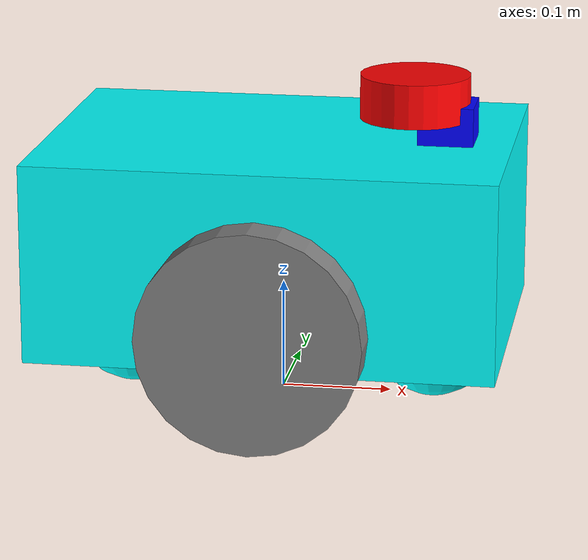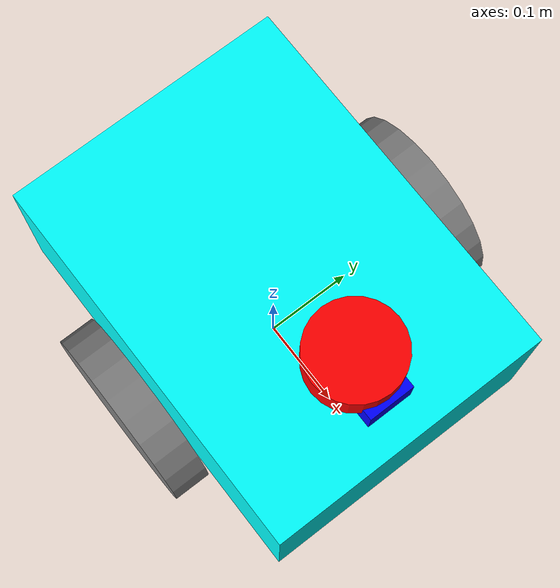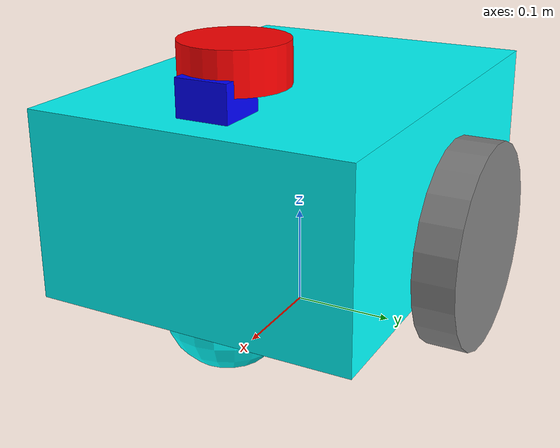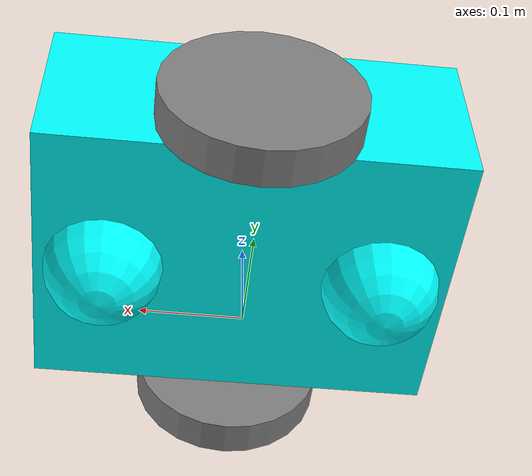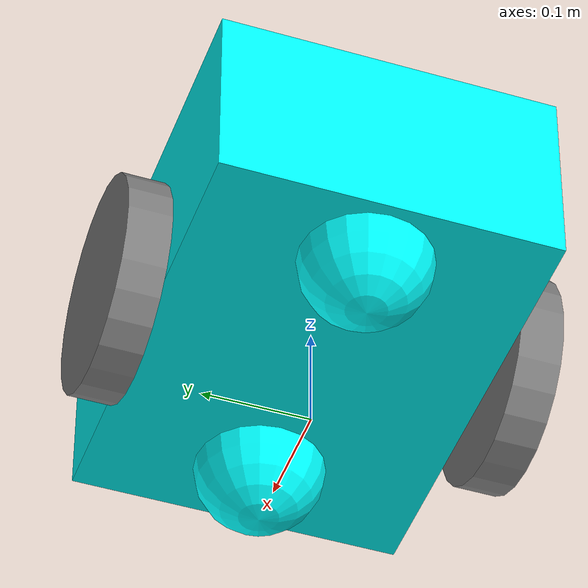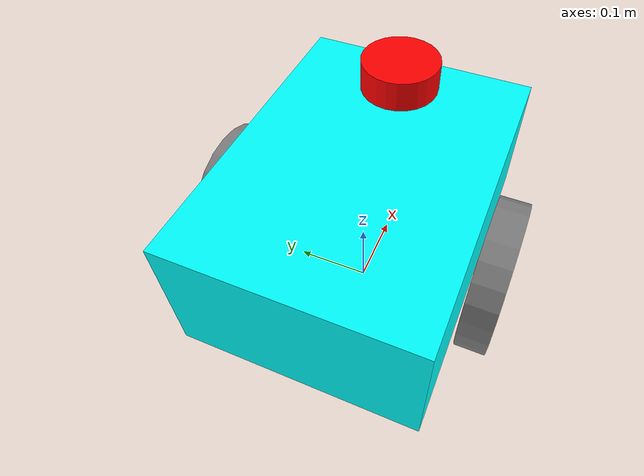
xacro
<?xml version="1.0"?>
<robot name="sam_bot" xmlns:xacro="http://ros.org/wiki/xacro">

  <!-- =============================================================
       0. 기본 파라미터
       ============================================================= -->
  <xacro:property name="base_width"  value="0.31"/>
  <xacro:property name="base_length" value="0.42"/>
  <xacro:property name="base_height" value="0.18"/>

  <xacro:property name="wheel_radius" value="0.10"/>
  <xacro:property name="wheel_width"  value="0.04"/>
  <xacro:property name="wheel_ygap"   value="0.025"/>
  <xacro:property name="wheel_zoff"   value="0.05"/>
  <xacro:property name="wheel_xoff"   value="0.0"/>

  <xacro:property name="caster_xoff"  value="0.14"/>

  <!-- =============================================================
       1. 관성 매크로
       ============================================================= -->
  <xacro:macro name="box_inertia" params="m w h d">
    <inertial>
      <origin xyz="0 0 0" rpy="${pi/2} 0 ${pi/2}"/>
      <mass value="${m}"/>
      <inertia ixx="${(m/12) * (h*h + d*d)}" ixy="0.0" ixz="0.0"
               iyy="${(m/12) * (w*w + d*d)}" iyz="0.0"
               izz="${(m/12) * (w*w + h*h)}"/>
    </inertial>
  </xacro:macro>

  <xacro:macro name="cylinder_inertia" params="m r h">
    <inertial>
      <origin xyz="0 0 0" rpy="${pi/2} 0 0" />
      <mass value="${m}"/>
      <inertia ixx="${(m/12) * (3*r*r + h*h)}" ixy="0" ixz="0"
               iyy="${(m/12) * (3*r*r + h*h)}" iyz="0"
               izz="${(m/2) * (r*r)}"/>
    </inertial>
  </xacro:macro>

  <xacro:macro name="sphere_inertia" params="m r">
    <inertial>
      <mass value="${m}"/>
      <inertia ixx="${(2/5) * m * (r*r)}" ixy="0.0" ixz="0.0"
               iyy="${(2/5) * m * (r*r)}" iyz="0.0"
               izz="${(2/5) * m * (r*r)}"/>
    </inertial>
  </xacro:macro>

  <!-- =============================================================
       2. 링크 / 조인트
       ============================================================= -->

  <link name="base_link">
    <visual>
      <geometry>
        <box size="${base_length} ${base_width} ${base_height}"/>
      </geometry>
      <material name="Cyan">
        <color rgba="0 1.0 1.0 1.0"/>
      </material>
    </visual>
    <collision>
      <geometry>
        <box size="${base_length} ${base_width} ${base_height}"/>
      </geometry>
    </collision>
    <xacro:box_inertia m="15" w="${base_width}" d="${base_length}" h="${base_height}"/>
  </link>

  <link name="base_footprint"/>

  <joint name="base_joint" type="fixed">
    <parent link="base_footprint"/>
    <child link="base_link"/>
    <origin xyz="0.0 0.0 ${(wheel_radius + wheel_zoff)}" rpy="0 0 0"/>
  </joint>

  <xacro:macro name="wheel" params="prefix x_reflect y_reflect">
    <link name="${prefix}_link">
      <visual>
        <origin xyz="0 0 0" rpy="${pi/2} 0 0"/>
        <geometry>
          <cylinder radius="${wheel_radius}" length="${wheel_width}"/>
        </geometry>
        <material name="Gray">
          <color rgba="0.5 0.5 0.5 1.0"/>
        </material>
      </visual>
      <collision>
        <origin xyz="0 0 0" rpy="${pi/2} 0 0"/>
        <geometry>
          <cylinder radius="${wheel_radius}" length="${wheel_width}"/>
        </geometry>
      </collision>
      <xacro:cylinder_inertia m="0.5" r="${wheel_radius}" h="${wheel_width}"/>
    </link>

    <joint name="${prefix}_joint" type="continuous">
      <parent link="base_link"/>
      <child link="${prefix}_link"/>
      <origin xyz="${x_reflect * wheel_xoff} ${y_reflect * (base_width/2 + wheel_ygap)} ${-wheel_zoff}" rpy="0 0 0"/>
      <axis xyz="0 1 0"/>
    </joint>

    <!-- Gazebo 물리 속성 -->
    <gazebo reference="${prefix}_joint">
      <implicitSpringDamper>1</implicitSpringDamper>
    </gazebo>

    <gazebo reference="${prefix}_link">
      <mu1>1.0</mu1>
      <mu2>1.0</mu2>
      <kp>1000000.0</kp>
      <kd>100.0</kd>
      <material>Gazebo/Grey</material>
    </gazebo>
  </xacro:macro>

  <!-- 좌, 우 구동 휠 인스턴스 -->
  <xacro:wheel prefix="drivewhl_l" x_reflect="1" y_reflect="1"/>
  <xacro:wheel prefix="drivewhl_r" x_reflect="1" y_reflect="-1"/>

  <xacro:macro name="caster" params="prefix x_offset">
    <link name="${prefix}_caster">
      <visual>
        <geometry>
          <sphere radius="${wheel_radius + wheel_zoff - (base_height/2)}"/>
        </geometry>
        <material name="Cyan">
          <color rgba="0 1.0 1.0 1.0"/>
        </material>
      </visual>
      <collision>
        <geometry>
          <sphere radius="${wheel_radius + wheel_zoff - (base_height/2)}"/>
        </geometry>
      </collision>
      <xacro:sphere_inertia m="0.5" r="${wheel_radius + wheel_zoff - (base_height/2)}"/>
    </link>

    <joint name="${prefix}_caster_joint" type="fixed">
      <parent link="base_link"/>
      <child link="${prefix}_caster"/>
      <origin xyz="${x_offset} 0.0 ${-(base_height/2)}" rpy="0 0 0"/>
    </joint>
  </xacro:macro>

  <xacro:caster prefix="front" x_offset="${caster_xoff}"/>
  <xacro:caster prefix="rear"  x_offset="-${caster_xoff}"/>

  <!-- 레이저 -->
  <link name="laser">
    <visual>
      <geometry>
        <cylinder radius="0.05" length="0.04"/>
      </geometry>
      <material name="Red">
        <color rgba="1.0 0.0 0.0 1.0"/>
      </material>
    </visual>
    <collision>
      <geometry>
        <cylinder radius="0.05" length="0.04"/>
      </geometry>
    </collision>
    <xacro:cylinder_inertia m="0.1" r="0.05" h="0.04"/>
  </link>

  <joint name="laser_joint" type="fixed">
    <parent link="base_link"/>
    <child link="laser"/>
    <origin xyz="0.12 0 0.13" rpy="0 0 0"/>
  </joint>

  <!-- 카메라 -->
  <link name="camera_link">
    <visual>
      <geometry>
        <box size="0.05 0.05 0.05"/>
      </geometry>
      <material name="Blue">
        <color rgba="0.0 0.0 1.0 1.0"/>
      </material>
    </visual>
    <collision>
      <geometry>
        <box size="0.05 0.05 0.05"/>
      </geometry>
    </collision>
    <xacro:box_inertia m="0.1" w="0.05" d="0.05" h="0.05"/>
  </link>

  <joint name="camera_joint" type="fixed">
    <parent link="base_link"/>
    <child link="camera_link"/>
    <origin xyz="0.15 0 0.10" rpy="0 0 0"/>
  </joint>

  <link name="camera_depth_frame"/>
  <joint name="camera_depth_joint" type="fixed">
    <parent link="camera_link"/>
    <child link="camera_depth_frame"/>
    <origin xyz="0 0 0" rpy="-1.5707 0 -1.5707"/>
  </joint>

  <!-- IMU -->
  <link name="imu_link">
    <visual>
      <geometry>
        <box size="0.02 0.02 0.02"/>
      </geometry>
      <material name="Green">
        <color rgba="0 1.0 0 1.0"/>
      </material>
    </visual>
    <collision>
      <geometry>
        <box size="0.02 0.02 0.02"/>
      </geometry>
    </collision>
    <xacro:box_inertia m="0.01" w="0.02" d="0.02" h="0.02"/>
  </link>

  <joint name="imu_joint" type="fixed">
    <parent link="base_link"/>
    <child link="imu_link"/>
    <origin xyz="0 0 0.05" rpy="0 0 0"/>
  </joint>

  <!-- =============================================================
       3. Gazebo 플러그인 및 물리 설정
       ============================================================= -->

  <!-- (3‑1) Gazebo‑ROS State Publisher : TF 트리 브로드캐스트 -->
  <gazebo>
    <plugin name="gazebo_ros_state_publisher"
            filename="libgazebo_ros_state_publisher.so">
      <ros>
        <namespace>/</namespace>
      </ros>
    </plugin>
  </gazebo>

  <!-- (3‑2) 차동 구동 플러그인 -->
  <gazebo>
    <plugin name="differential_drive_controller"
            filename="libgazebo_ros_diff_drive.so">
      <ros>
        <namespace>/</namespace>
        <remapping>cmd_vel:=cmd_vel</remapping>
        <remapping>odom:=odom</remapping>
      </ros>

      <left_joint>drivewhl_l_joint</left_joint>
      <right_joint>drivewhl_r_joint</right_joint>

      <wheel_separation>0.36</wheel_separation>
      <wheel_diameter>0.2</wheel_diameter>

      <max_wheel_torque>200</max_wheel_torque>
      <max_wheel_acceleration>10.0</max_wheel_acceleration>

      <odometry_frame>odom</odometry_frame>
      <robot_base_frame>base_footprint</robot_base_frame>

      <publish_odom>true</publish_odom>
      <publish_odom_tf>true</publish_odom_tf>

      <!-- TF 중복 방지: wheel TF는 robot_state_publisher가 담당 -->
      <publish_wheel_tf>false</publish_wheel_tf>

      <odometry_topic>odom</odometry_topic>
      <odometry_source>world</odometry_source>

      <update_rate>30</update_rate>
    </plugin>
  </gazebo>

  <!-- (3‑3) 레이저 센서 -->
  <gazebo reference="laser">
    <material>Gazebo/FlatBlack</material>
    <sensor name="lds_lfcd_sensor" type="ray">
      <pose>0 0 0 0 0 0</pose>
      <visualize>true</visualize>
      <update_rate>5</update_rate>
      <ray>
        <scan>
          <horizontal>
            <samples>360</samples>
            <resolution>1</resolution>
            <min_angle>-3.141592654</min_angle>
            <max_angle>3.141592654</max_angle>
          </horizontal>
        </scan>
        <range>
          <min>0.10</min>
          <max>30.0</max>
          <resolution>0.01</resolution>
        </range>
        <noise>
          <type>gaussian</type>
          <mean>0.0</mean>
          <stddev>0.01</stddev>
        </noise>
      </ray>
      <plugin name="gazebo_ros_lds_lfcd_controller"
              filename="libgazebo_ros_ray_sensor.so">
        <ros>
          <remapping>~/out:=scan</remapping>
        </ros>
        <output_type>sensor_msgs/LaserScan</output_type>
      </plugin>
    </sensor>
  </gazebo>

  <!-- (3‑4) 카메라 센서 -->
  <gazebo reference="camera_link">
    <material>Gazebo/Blue</material>
    <sensor name="d455_camera" type="depth">
      <update_rate>30.0</update_rate>
      <camera>
        <horizontal_fov>1.518436</horizontal_fov>
        <vertical_fov>1.012291</vertical_fov>
        <image>
          <width>1280</width>
          <height>720</height>
          <format>R8G8B8</format>
        </image>
        <clip>
          <near>0.4</near>
          <far>6.0</far>
        </clip>
        <noise>
          <type>gaussian</type>
          <mean>0.0</mean>
          <stddev>0.007</stddev>
        </noise>
      </camera>
      <plugin name="camera_driver" filename="libgazebo_ros_camera.so">
        <ros>
          <remapping>~/image_raw:=camera/image_raw</remapping>
          <remapping>~/image_depth:=camera/depth/image_raw</remapping>
          <remapping>~/camera_info:=camera/camera_info</remapping>
          <remapping>~/camera_info_depth:=camera/depth/camera_info</remapping>
          <remapping>~/points:=camera/depth/points</remapping>
        </ros>
        <camera_name>d455_camera</camera_name>
        <frame_name>camera_depth_frame</frame_name>
        <hack_baseline>0.07</hack_baseline>
      </plugin>
    </sensor>
  </gazebo>

  <!-- (3‑5) IMU -->
  <gazebo reference="imu_link">
    <sensor name="imu_sensor" type="imu">
      <always_on>true</always_on>
      <update_rate>100</update_rate>
      <visualize>true</visualize>
      <plugin filename="libgazebo_ros_imu_sensor.so" name="imu_plugin">
        <ros>
          <remapping>~/out:=imu</remapping>
        </ros>
        <initial_orientation_as_reference>false</initial_orientation_as_reference>
      </plugin>
      <imu>
        <!-- noise parameters 그대로 유지 -->
        <angular_velocity>
          <x><noise type="gaussian"><mean>0.0</mean><stddev>2e-4</stddev><bias_mean>0.0000075</bias_mean><bias_stddev>0.0000008</bias_stddev></noise></x>
          <y><noise type="gaussian"><mean>0.0</mean><stddev>2e-4</stddev><bias_mean>0.0000075</bias_mean><bias_stddev>0.0000008</bias_stddev></noise></y>
          <z><noise type="gaussian"><mean>0.0</mean><stddev>2e-4</stddev><bias_mean>0.0000075</bias_mean><bias_stddev>0.0000008</bias_stddev></noise></z>
        </angular_velocity>
        <linear_acceleration>
          <x><noise type="gaussian"><mean>0.0</mean><stddev>1.7e-2</stddev><bias_mean>0.1</bias_mean><bias_stddev>0.001</bias_stddev></noise></x>
          <y><noise type="gaussian"><mean>0.0</mean><stddev>1.7e-2</stddev><bias_mean>0.1</bias_mean><bias_stddev>0.001</bias_stddev></noise></y>
          <z><noise type="gaussian"><mean>0.0</mean><stddev>1.7e-2</stddev><bias_mean>0.1</bias_mean><bias_stddev>0.001</bias_stddev></noise></z>
        </linear_acceleration>
      </imu>
    </sensor>
  </gazebo>

</robot>
